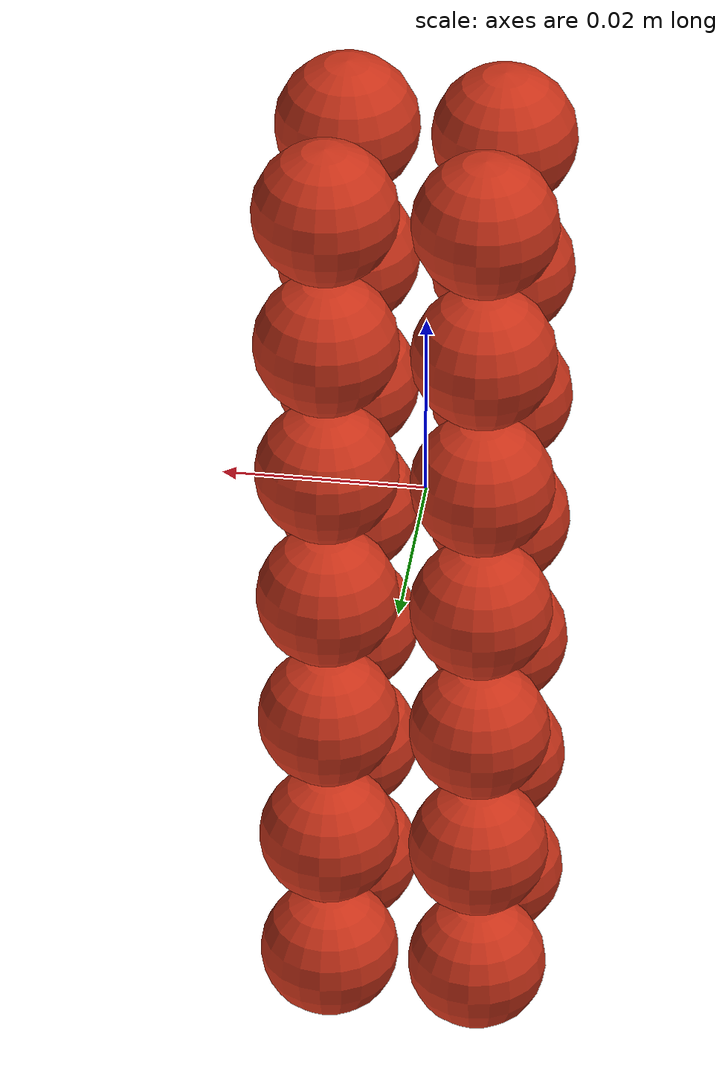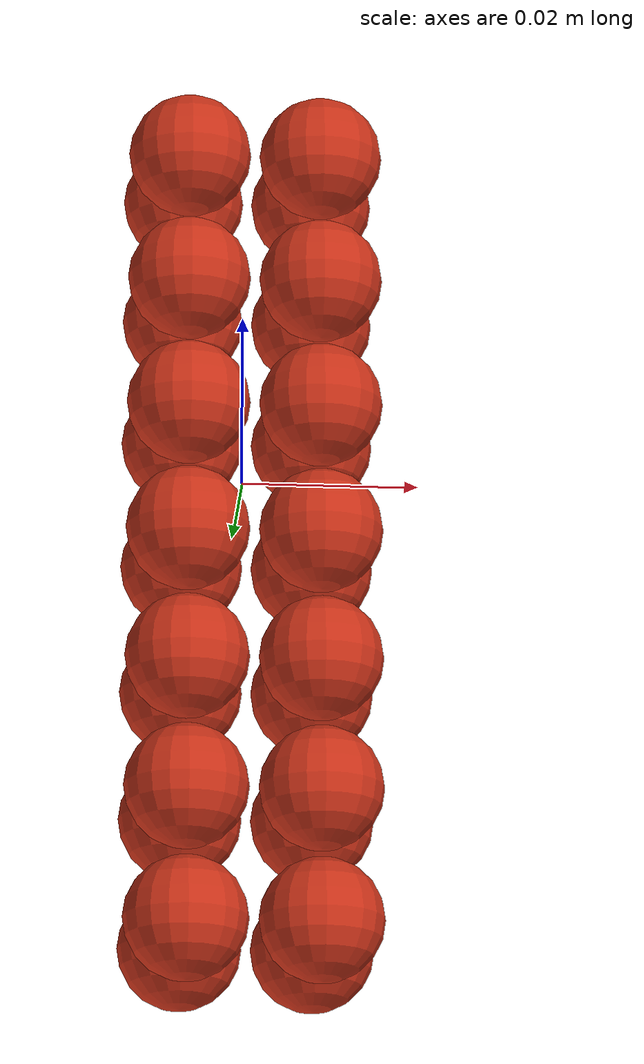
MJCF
<mujoco model="liquid">
  <compiler angle="radian"/>

  <worldbody>
    <body name="liquid">
      <body name="B0_0_0" pos="-0.0065 -0.0065 -0.0525">
        <joint name="B0_0_0_0_0" pos="0 0 0" axis="1 0 0" type="slide" group="3"/>
        <joint name="B0_0_0_0_1" pos="0 0 0" axis="0 1 0" type="slide" group="3"/>
        <joint name="B0_0_0_0_2" pos="0 0 0" axis="0 0 1" type="slide" group="3"/>
        <geom size="0.007" condim="1" priority="1" rgba="0.8 0.2 0.1 1"/>
        <site name="S0" pos="0 0 0" group="3"/>
      </body>
      <body name="B0_0_1" pos="-0.0065 -0.0065 -0.0375">
        <joint name="B0_0_0_1_0" pos="0 0 0" axis="1 0 0" type="slide" group="3"/>
        <joint name="B0_0_0_1_1" pos="0 0 0" axis="0 1 0" type="slide" group="3"/>
        <joint name="B0_0_0_1_2" pos="0 0 0" axis="0 0 1" type="slide" group="3"/>
        <geom size="0.007" condim="1" priority="1" rgba="0.8 0.2 0.1 1"/>
        <site name="S1" pos="0 0 0" group="3"/>
      </body>
      <body name="B0_0_2" pos="-0.0065 -0.0065 -0.0225">
        <joint name="B0_0_0_2_0" pos="0 0 0" axis="1 0 0" type="slide" group="3"/>
        <joint name="B0_0_0_2_1" pos="0 0 0" axis="0 1 0" type="slide" group="3"/>
        <joint name="B0_0_0_2_2" pos="0 0 0" axis="0 0 1" type="slide" group="3"/>
        <geom size="0.007" condim="1" priority="1" rgba="0.8 0.2 0.1 1"/>
        <site name="S2" pos="0 0 0" group="3"/>
      </body>
      <body name="B0_0_3" pos="-0.0065 -0.0065 -0.0075">
        <joint name="B0_0_0_3_0" pos="0 0 0" axis="1 0 0" type="slide" group="3"/>
        <joint name="B0_0_0_3_1" pos="0 0 0" axis="0 1 0" type="slide" group="3"/>
        <joint name="B0_0_0_3_2" pos="0 0 0" axis="0 0 1" type="slide" group="3"/>
        <geom size="0.007" condim="1" priority="1" rgba="0.8 0.2 0.1 1"/>
        <site name="S3" pos="0 0 0" group="3"/>
      </body>
      <body name="B0_0_4" pos="-0.0065 -0.0065 0.0075">
        <joint name="B0_0_0_4_0" pos="0 0 0" axis="1 0 0" type="slide" group="3"/>
        <joint name="B0_0_0_4_1" pos="0 0 0" axis="0 1 0" type="slide" group="3"/>
        <joint name="B0_0_0_4_2" pos="0 0 0" axis="0 0 1" type="slide" group="3"/>
        <geom size="0.007" condim="1" priority="1" rgba="0.8 0.2 0.1 1"/>
        <site name="S4" pos="0 0 0" group="3"/>
      </body>
      <body name="B0_0_5" pos="-0.0065 -0.0065 0.0225">
        <joint name="B0_0_0_5_0" pos="0 0 0" axis="1 0 0" type="slide" group="3"/>
        <joint name="B0_0_0_5_1" pos="0 0 0" axis="0 1 0" type="slide" group="3"/>
        <joint name="B0_0_0_5_2" pos="0 0 0" axis="0 0 1" type="slide" group="3"/>
        <geom size="0.007" condim="1" priority="1" rgba="0.8 0.2 0.1 1"/>
        <site name="S5" pos="0 0 0" group="3"/>
      </body>
      <body name="B0_0_6" pos="-0.0065 -0.0065 0.0375">
        <joint name="B0_0_0_6_0" pos="0 0 0" axis="1 0 0" type="slide" group="3"/>
        <joint name="B0_0_0_6_1" pos="0 0 0" axis="0 1 0" type="slide" group="3"/>
        <joint name="B0_0_0_6_2" pos="0 0 0" axis="0 0 1" type="slide" group="3"/>
        <geom size="0.007" condim="1" priority="1" rgba="0.8 0.2 0.1 1"/>
        <site name="S6" pos="0 0 0" group="3"/>
      </body>
      <body name="B0_1_0" pos="-0.0065 0.0085 -0.0525">
        <joint name="B0_0_1_0_0" pos="0 0 0" axis="1 0 0" type="slide" group="3"/>
        <joint name="B0_0_1_0_1" pos="0 0 0" axis="0 1 0" type="slide" group="3"/>
        <joint name="B0_0_1_0_2" pos="0 0 0" axis="0 0 1" type="slide" group="3"/>
        <geom size="0.007" condim="1" priority="1" rgba="0.8 0.2 0.1 1"/>
        <site name="S7" pos="0 0 0" group="3"/>
      </body>
      <body name="B0_1_1" pos="-0.0065 0.0085 -0.0375">
        <joint name="B0_0_1_1_0" pos="0 0 0" axis="1 0 0" type="slide" group="3"/>
        <joint name="B0_0_1_1_1" pos="0 0 0" axis="0 1 0" type="slide" group="3"/>
        <joint name="B0_0_1_1_2" pos="0 0 0" axis="0 0 1" type="slide" group="3"/>
        <geom size="0.007" condim="1" priority="1" rgba="0.8 0.2 0.1 1"/>
        <site name="S8" pos="0 0 0" group="3"/>
      </body>
      <body name="B0_1_2" pos="-0.0065 0.0085 -0.0225">
        <joint name="B0_0_1_2_0" pos="0 0 0" axis="1 0 0" type="slide" group="3"/>
        <joint name="B0_0_1_2_1" pos="0 0 0" axis="0 1 0" type="slide" group="3"/>
        <joint name="B0_0_1_2_2" pos="0 0 0" axis="0 0 1" type="slide" group="3"/>
        <geom size="0.007" condim="1" priority="1" rgba="0.8 0.2 0.1 1"/>
        <site name="S9" pos="0 0 0" group="3"/>
      </body>
      <body name="B0_1_3" pos="-0.0065 0.0085 -0.0075">
        <joint name="B0_0_1_3_0" pos="0 0 0" axis="1 0 0" type="slide" group="3"/>
        <joint name="B0_0_1_3_1" pos="0 0 0" axis="0 1 0" type="slide" group="3"/>
        <joint name="B0_0_1_3_2" pos="0 0 0" axis="0 0 1" type="slide" group="3"/>
        <geom size="0.007" condim="1" priority="1" rgba="0.8 0.2 0.1 1"/>
        <site name="S10" pos="0 0 0" group="3"/>
      </body>
      <body name="B0_1_4" pos="-0.0065 0.0085 0.0075">
        <joint name="B0_0_1_4_0" pos="0 0 0" axis="1 0 0" type="slide" group="3"/>
        <joint name="B0_0_1_4_1" pos="0 0 0" axis="0 1 0" type="slide" group="3"/>
        <joint name="B0_0_1_4_2" pos="0 0 0" axis="0 0 1" type="slide" group="3"/>
        <geom size="0.007" condim="1" priority="1" rgba="0.8 0.2 0.1 1"/>
        <site name="S11" pos="0 0 0" group="3"/>
      </body>
      <body name="B0_1_5" pos="-0.0065 0.0085 0.0225">
        <joint name="B0_0_1_5_0" pos="0 0 0" axis="1 0 0" type="slide" group="3"/>
        <joint name="B0_0_1_5_1" pos="0 0 0" axis="0 1 0" type="slide" group="3"/>
        <joint name="B0_0_1_5_2" pos="0 0 0" axis="0 0 1" type="slide" group="3"/>
        <geom size="0.007" condim="1" priority="1" rgba="0.8 0.2 0.1 1"/>
        <site name="S12" pos="0 0 0" group="3"/>
      </body>
      <body name="B0_1_6" pos="-0.0065 0.0085 0.0375">
        <joint name="B0_0_1_6_0" pos="0 0 0" axis="1 0 0" type="slide" group="3"/>
        <joint name="B0_0_1_6_1" pos="0 0 0" axis="0 1 0" type="slide" group="3"/>
        <joint name="B0_0_1_6_2" pos="0 0 0" axis="0 0 1" type="slide" group="3"/>
        <geom size="0.007" condim="1" priority="1" rgba="0.8 0.2 0.1 1"/>
        <site name="S13" pos="0 0 0" group="3"/>
      </body>
      <body name="B1_0_0" pos="0.0085 -0.0065 -0.0525">
        <joint name="B0_1_0_0_0" pos="0 0 0" axis="1 0 0" type="slide" group="3"/>
        <joint name="B0_1_0_0_1" pos="0 0 0" axis="0 1 0" type="slide" group="3"/>
        <joint name="B0_1_0_0_2" pos="0 0 0" axis="0 0 1" type="slide" group="3"/>
        <geom size="0.007" condim="1" priority="1" rgba="0.8 0.2 0.1 1"/>
        <site name="S14" pos="0 0 0" group="3"/>
      </body>
      <body name="B1_0_1" pos="0.0085 -0.0065 -0.0375">
        <joint name="B0_1_0_1_0" pos="0 0 0" axis="1 0 0" type="slide" group="3"/>
        <joint name="B0_1_0_1_1" pos="0 0 0" axis="0 1 0" type="slide" group="3"/>
        <joint name="B0_1_0_1_2" pos="0 0 0" axis="0 0 1" type="slide" group="3"/>
        <geom size="0.007" condim="1" priority="1" rgba="0.8 0.2 0.1 1"/>
        <site name="S15" pos="0 0 0" group="3"/>
      </body>
      <body name="B1_0_2" pos="0.0085 -0.0065 -0.0225">
        <joint name="B0_1_0_2_0" pos="0 0 0" axis="1 0 0" type="slide" group="3"/>
        <joint name="B0_1_0_2_1" pos="0 0 0" axis="0 1 0" type="slide" group="3"/>
        <joint name="B0_1_0_2_2" pos="0 0 0" axis="0 0 1" type="slide" group="3"/>
        <geom size="0.007" condim="1" priority="1" rgba="0.8 0.2 0.1 1"/>
        <site name="S16" pos="0 0 0" group="3"/>
      </body>
      <body name="B1_0_3" pos="0.0085 -0.0065 -0.0075">
        <joint name="B0_1_0_3_0" pos="0 0 0" axis="1 0 0" type="slide" group="3"/>
        <joint name="B0_1_0_3_1" pos="0 0 0" axis="0 1 0" type="slide" group="3"/>
        <joint name="B0_1_0_3_2" pos="0 0 0" axis="0 0 1" type="slide" group="3"/>
        <geom size="0.007" condim="1" priority="1" rgba="0.8 0.2 0.1 1"/>
        <site name="S17" pos="0 0 0" group="3"/>
      </body>
      <body name="B1_0_4" pos="0.0085 -0.0065 0.0075">
        <joint name="B0_1_0_4_0" pos="0 0 0" axis="1 0 0" type="slide" group="3"/>
        <joint name="B0_1_0_4_1" pos="0 0 0" axis="0 1 0" type="slide" group="3"/>
        <joint name="B0_1_0_4_2" pos="0 0 0" axis="0 0 1" type="slide" group="3"/>
        <geom size="0.007" condim="1" priority="1" rgba="0.8 0.2 0.1 1"/>
        <site name="S18" pos="0 0 0" group="3"/>
      </body>
      <body name="B1_0_5" pos="0.0085 -0.0065 0.0225">
        <joint name="B0_1_0_5_0" pos="0 0 0" axis="1 0 0" type="slide" group="3"/>
        <joint name="B0_1_0_5_1" pos="0 0 0" axis="0 1 0" type="slide" group="3"/>
        <joint name="B0_1_0_5_2" pos="0 0 0" axis="0 0 1" type="slide" group="3"/>
        <geom size="0.007" condim="1" priority="1" rgba="0.8 0.2 0.1 1"/>
        <site name="S19" pos="0 0 0" group="3"/>
      </body>
      <body name="B1_0_6" pos="0.0085 -0.0065 0.0375">
        <joint name="B0_1_0_6_0" pos="0 0 0" axis="1 0 0" type="slide" group="3"/>
        <joint name="B0_1_0_6_1" pos="0 0 0" axis="0 1 0" type="slide" group="3"/>
        <joint name="B0_1_0_6_2" pos="0 0 0" axis="0 0 1" type="slide" group="3"/>
        <geom size="0.007" condim="1" priority="1" rgba="0.8 0.2 0.1 1"/>
        <site name="S20" pos="0 0 0" group="3"/>
      </body>
      <body name="B1_1_0" pos="0.0085 0.0085 -0.0525">
        <joint name="B0_1_1_0_0" pos="0 0 0" axis="1 0 0" type="slide" group="3"/>
        <joint name="B0_1_1_0_1" pos="0 0 0" axis="0 1 0" type="slide" group="3"/>
        <joint name="B0_1_1_0_2" pos="0 0 0" axis="0 0 1" type="slide" group="3"/>
        <geom size="0.007" condim="1" priority="1" rgba="0.8 0.2 0.1 1"/>
        <site name="S21" pos="0 0 0" group="3"/>
      </body>
      <body name="B1_1_1" pos="0.0085 0.0085 -0.0375">
        <joint name="B0_1_1_1_0" pos="0 0 0" axis="1 0 0" type="slide" group="3"/>
        <joint name="B0_1_1_1_1" pos="0 0 0" axis="0 1 0" type="slide" group="3"/>
        <joint name="B0_1_1_1_2" pos="0 0 0" axis="0 0 1" type="slide" group="3"/>
        <geom size="0.007" condim="1" priority="1" rgba="0.8 0.2 0.1 1"/>
        <site name="S22" pos="0 0 0" group="3"/>
      </body>
      <body name="B1_1_2" pos="0.0085 0.0085 -0.0225">
        <joint name="B0_1_1_2_0" pos="0 0 0" axis="1 0 0" type="slide" group="3"/>
        <joint name="B0_1_1_2_1" pos="0 0 0" axis="0 1 0" type="slide" group="3"/>
        <joint name="B0_1_1_2_2" pos="0 0 0" axis="0 0 1" type="slide" group="3"/>
        <geom size="0.007" condim="1" priority="1" rgba="0.8 0.2 0.1 1"/>
        <site name="S23" pos="0 0 0" group="3"/>
      </body>
      <body name="B1_1_3" pos="0.0085 0.0085 -0.0075">
        <joint name="B0_1_1_3_0" pos="0 0 0" axis="1 0 0" type="slide" group="3"/>
        <joint name="B0_1_1_3_1" pos="0 0 0" axis="0 1 0" type="slide" group="3"/>
        <joint name="B0_1_1_3_2" pos="0 0 0" axis="0 0 1" type="slide" group="3"/>
        <geom size="0.007" condim="1" priority="1" rgba="0.8 0.2 0.1 1"/>
        <site name="S24" pos="0 0 0" group="3"/>
      </body>
      <body name="B1_1_4" pos="0.0085 0.0085 0.0075">
        <joint name="B0_1_1_4_0" pos="0 0 0" axis="1 0 0" type="slide" group="3"/>
        <joint name="B0_1_1_4_1" pos="0 0 0" axis="0 1 0" type="slide" group="3"/>
        <joint name="B0_1_1_4_2" pos="0 0 0" axis="0 0 1" type="slide" group="3"/>
        <geom size="0.007" condim="1" priority="1" rgba="0.8 0.2 0.1 1"/>
        <site name="S25" pos="0 0 0" group="3"/>
      </body>
      <body name="B1_1_5" pos="0.0085 0.0085 0.0225">
        <joint name="B0_1_1_5_0" pos="0 0 0" axis="1 0 0" type="slide" group="3"/>
        <joint name="B0_1_1_5_1" pos="0 0 0" axis="0 1 0" type="slide" group="3"/>
        <joint name="B0_1_1_5_2" pos="0 0 0" axis="0 0 1" type="slide" group="3"/>
        <geom size="0.007" condim="1" priority="1" rgba="0.8 0.2 0.1 1"/>
        <site name="S26" pos="0 0 0" group="3"/>
      </body>
      <body name="B1_1_6" pos="0.0085 0.0085 0.0375">
        <joint name="B0_1_1_6_0" pos="0 0 0" axis="1 0 0" type="slide" group="3"/>
        <joint name="B0_1_1_6_1" pos="0 0 0" axis="0 1 0" type="slide" group="3"/>
        <joint name="B0_1_1_6_2" pos="0 0 0" axis="0 0 1" type="slide" group="3"/>
        <geom size="0.007" condim="1" priority="1" rgba="0.8 0.2 0.1 1"/>
        <site name="S27" pos="0 0 0" group="3"/>
      </body>
    </body>
  </worldbody>
</mujoco>
